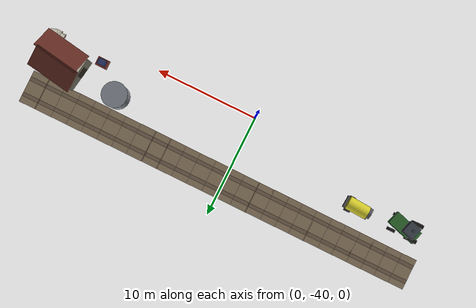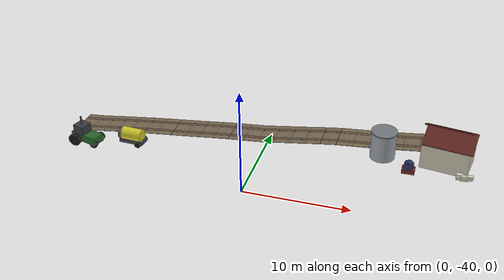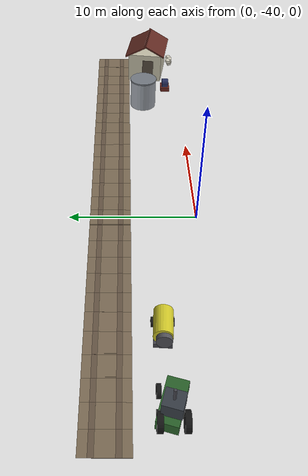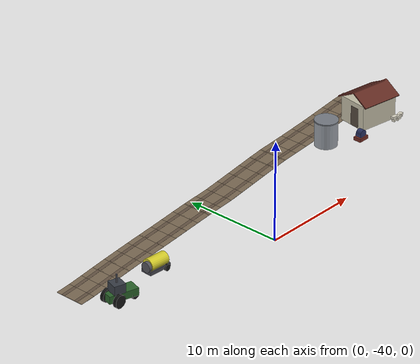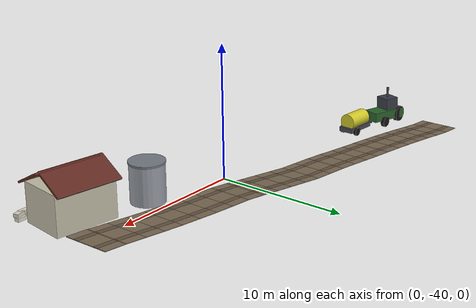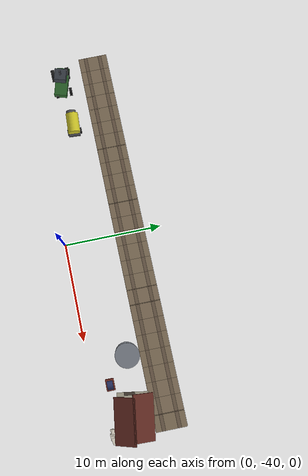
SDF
<sdf version="1.9">
 <world name="orchard_10x41">
  <model name="access_road">
   <static>true</static>
   <link name="link">
    <visual name="road_1">
     <pose>-18.510 -33.300 0.227 0.0000 -0.0709 0.0000</pose>
     <geometry><box><size>1.5696 3.0000 0.0400</size></box></geometry>
     <material>
      <ambient>0.440 0.380 0.300 1</ambient>
      <diffuse>0.484 0.418 0.330 1</diffuse>
      <specular>0.132 0.114 0.090 1</specular>
     </material>
     <plugin filename="gz-sim-label-system" name="gz::sim::systems::Label"><label>65</label></plugin>
    </visual>
    <visual name="rut_2">
     <pose>-18.510 -34.050 0.249 0.0000 -0.0709 0.0000</pose>
     <geometry><box><size>1.5696 0.3500 0.0120</size></box></geometry>
     <material>
      <ambient>0.360 0.300 0.240 1</ambient>
      <diffuse>0.396 0.330 0.264 1</diffuse>
      <specular>0.108 0.090 0.072 1</specular>
     </material>
     <plugin filename="gz-sim-label-system" name="gz::sim::systems::Label"><label>65</label></plugin>
    </visual>
    <visual name="rut_3">
     <pose>-18.510 -32.550 0.249 0.0000 -0.0709 0.0000</pose>
     <geometry><box><size>1.5696 0.3500 0.0120</size></box></geometry>
     <material>
      <ambient>0.360 0.300 0.240 1</ambient>
      <diffuse>0.396 0.330 0.264 1</diffuse>
      <specular>0.108 0.090 0.072 1</specular>
     </material>
     <plugin filename="gz-sim-label-system" name="gz::sim::systems::Label"><label>65</label></plugin>
    </visual>
    <visual name="road_4">
     <pose>-17.029 -33.300 0.366 0.0000 -0.1166 0.0000</pose>
     <geometry><box><size>1.5696 3.0000 0.0400</size></box></geometry>
     <material>
      <ambient>0.440 0.380 0.300 1</ambient>
      <diffuse>0.484 0.418 0.330 1</diffuse>
      <specular>0.132 0.114 0.090 1</specular>
     </material>
     <plugin filename="gz-sim-label-system" name="gz::sim::systems::Label"><label>65</label></plugin>
    </visual>
    <visual name="rut_5">
     <pose>-17.029 -34.050 0.388 0.0000 -0.1166 0.0000</pose>
     <geometry><box><size>1.5696 0.3500 0.0120</size></box></geometry>
     <material>
      <ambient>0.360 0.300 0.240 1</ambient>
      <diffuse>0.396 0.330 0.264 1</diffuse>
      <specular>0.108 0.090 0.072 1</specular>
     </material>
     <plugin filename="gz-sim-label-system" name="gz::sim::systems::Label"><label>65</label></plugin>
    </visual>
    <visual name="rut_6">
     <pose>-17.029 -32.550 0.388 0.0000 -0.1166 0.0000</pose>
     <geometry><box><size>1.5696 0.3500 0.0120</size></box></geometry>
     <material>
      <ambient>0.360 0.300 0.240 1</ambient>
      <diffuse>0.396 0.330 0.264 1</diffuse>
      <specular>0.108 0.090 0.072 1</specular>
     </material>
     <plugin filename="gz-sim-label-system" name="gz::sim::systems::Label"><label>65</label></plugin>
    </visual>
    <visual name="road_7">
     <pose>-15.548 -33.300 0.547 0.0000 -0.1269 0.0000</pose>
     <geometry><box><size>1.5696 3.0000 0.0400</size></box></geometry>
     <material>
      <ambient>0.440 0.380 0.300 1</ambient>
      <diffuse>0.484 0.418 0.330 1</diffuse>
      <specular>0.132 0.114 0.090 1</specular>
     </material>
     <plugin filename="gz-sim-label-system" name="gz::sim::systems::Label"><label>65</label></plugin>
    </visual>
    <visual name="rut_8">
     <pose>-15.548 -34.050 0.569 0.0000 -0.1269 0.0000</pose>
     <geometry><box><size>1.5696 0.3500 0.0120</size></box></geometry>
     <material>
      <ambient>0.360 0.300 0.240 1</ambient>
      <diffuse>0.396 0.330 0.264 1</diffuse>
      <specular>0.108 0.090 0.072 1</specular>
     </material>
     <plugin filename="gz-sim-label-system" name="gz::sim::systems::Label"><label>65</label></plugin>
    </visual>
    <visual name="rut_9">
     <pose>-15.548 -32.550 0.569 0.0000 -0.1269 0.0000</pose>
     <geometry><box><size>1.5696 0.3500 0.0120</size></box></geometry>
     <material>
      <ambient>0.360 0.300 0.240 1</ambient>
      <diffuse>0.396 0.330 0.264 1</diffuse>
      <specular>0.108 0.090 0.072 1</specular>
     </material>
     <plugin filename="gz-sim-label-system" name="gz::sim::systems::Label"><label>65</label></plugin>
    </visual>
    <visual name="road_10">
     <pose>-14.067 -33.300 0.730 0.0000 -0.1186 0.0000</pose>
     <geometry><box><size>1.5696 3.0000 0.0400</size></box></geometry>
     <material>
      <ambient>0.440 0.380 0.300 1</ambient>
      <diffuse>0.484 0.418 0.330 1</diffuse>
      <specular>0.132 0.114 0.090 1</specular>
     </material>
     <plugin filename="gz-sim-label-system" name="gz::sim::systems::Label"><label>65</label></plugin>
    </visual>
    <visual name="rut_11">
     <pose>-14.067 -34.050 0.752 0.0000 -0.1186 0.0000</pose>
     <geometry><box><size>1.5696 0.3500 0.0120</size></box></geometry>
     <material>
      <ambient>0.360 0.300 0.240 1</ambient>
      <diffuse>0.396 0.330 0.264 1</diffuse>
      <specular>0.108 0.090 0.072 1</specular>
     </material>
     <plugin filename="gz-sim-label-system" name="gz::sim::systems::Label"><label>65</label></plugin>
    </visual>
    <visual name="rut_12">
     <pose>-14.067 -32.550 0.752 0.0000 -0.1186 0.0000</pose>
     <geometry><box><size>1.5696 0.3500 0.0120</size></box></geometry>
     <material>
      <ambient>0.360 0.300 0.240 1</ambient>
      <diffuse>0.396 0.330 0.264 1</diffuse>
      <specular>0.108 0.090 0.072 1</specular>
     </material>
     <plugin filename="gz-sim-label-system" name="gz::sim::systems::Label"><label>65</label></plugin>
    </visual>
    <visual name="road_13">
     <pose>-12.587 -33.300 0.899 0.0000 -0.1083 0.0000</pose>
     <geometry><box><size>1.5696 3.0000 0.0400</size></box></geometry>
     <material>
      <ambient>0.440 0.380 0.300 1</ambient>
      <diffuse>0.484 0.418 0.330 1</diffuse>
      <specular>0.132 0.114 0.090 1</specular>
     </material>
     <plugin filename="gz-sim-label-system" name="gz::sim::systems::Label"><label>65</label></plugin>
    </visual>
    <visual name="rut_14">
     <pose>-12.587 -34.050 0.921 0.0000 -0.1083 0.0000</pose>
     <geometry><box><size>1.5696 0.3500 0.0120</size></box></geometry>
     <material>
      <ambient>0.360 0.300 0.240 1</ambient>
      <diffuse>0.396 0.330 0.264 1</diffuse>
      <specular>0.108 0.090 0.072 1</specular>
     </material>
     <plugin filename="gz-sim-label-system" name="gz::sim::systems::Label"><label>65</label></plugin>
    </visual>
    <visual name="rut_15">
     <pose>-12.587 -32.550 0.921 0.0000 -0.1083 0.0000</pose>
     <geometry><box><size>1.5696 0.3500 0.0120</size></box></geometry>
     <material>
      <ambient>0.360 0.300 0.240 1</ambient>
      <diffuse>0.396 0.330 0.264 1</diffuse>
      <specular>0.108 0.090 0.072 1</specular>
     </material>
     <plugin filename="gz-sim-label-system" name="gz::sim::systems::Label"><label>65</label></plugin>
    </visual>
    <visual name="road_16">
     <pose>-11.106 -33.300 1.058 0.0000 -0.1068 0.0000</pose>
     <geometry><box><size>1.5696 3.0000 0.0400</size></box></geometry>
     <material>
      <ambient>0.440 0.380 0.300 1</ambient>
      <diffuse>0.484 0.418 0.330 1</diffuse>
      <specular>0.132 0.114 0.090 1</specular>
     </material>
     <plugin filename="gz-sim-label-system" name="gz::sim::systems::Label"><label>65</label></plugin>
    </visual>
    <visual name="rut_17">
     <pose>-11.106 -34.050 1.080 0.0000 -0.1068 0.0000</pose>
     <geometry><box><size>1.5696 0.3500 0.0120</size></box></geometry>
     <material>
      <ambient>0.360 0.300 0.240 1</ambient>
      <diffuse>0.396 0.330 0.264 1</diffuse>
      <specular>0.108 0.090 0.072 1</specular>
     </material>
     <plugin filename="gz-sim-label-system" name="gz::sim::systems::Label"><label>65</label></plugin>
    </visual>
    <visual name="rut_18">
     <pose>-11.106 -32.550 1.080 0.0000 -0.1068 0.0000</pose>
     <geometry><box><size>1.5696 0.3500 0.0120</size></box></geometry>
     <material>
      <ambient>0.360 0.300 0.240 1</ambient>
      <diffuse>0.396 0.330 0.264 1</diffuse>
      <specular>0.108 0.090 0.072 1</specular>
     </material>
     <plugin filename="gz-sim-label-system" name="gz::sim::systems::Label"><label>65</label></plugin>
    </visual>
    <visual name="road_19">
     <pose>-9.625 -33.300 1.208 0.0000 -0.0943 0.0000</pose>
     <geometry><box><size>1.5696 3.0000 0.0400</size></box></geometry>
     <material>
      <ambient>0.440 0.380 0.300 1</ambient>
      <diffuse>0.484 0.418 0.330 1</diffuse>
      <specular>0.132 0.114 0.090 1</specular>
     </material>
     <plugin filename="gz-sim-label-system" name="gz::sim::systems::Label"><label>65</label></plugin>
    </visual>
    <visual name="rut_20">
     <pose>-9.625 -34.050 1.230 0.0000 -0.0943 0.0000</pose>
     <geometry><box><size>1.5696 0.3500 0.0120</size></box></geometry>
     <material>
      <ambient>0.360 0.300 0.240 1</ambient>
      <diffuse>0.396 0.330 0.264 1</diffuse>
      <specular>0.108 0.090 0.072 1</specular>
     </material>
     <plugin filename="gz-sim-label-system" name="gz::sim::systems::Label"><label>65</label></plugin>
    </visual>
    <visual name="rut_21">
     <pose>-9.625 -32.550 1.230 0.0000 -0.0943 0.0000</pose>
     <geometry><box><size>1.5696 0.3500 0.0120</size></box></geometry>
     <material>
      <ambient>0.360 0.300 0.240 1</ambient>
      <diffuse>0.396 0.330 0.264 1</diffuse>
      <specular>0.108 0.090 0.072 1</specular>
     </material>
     <plugin filename="gz-sim-label-system" name="gz::sim::systems::Label"><label>65</label></plugin>
    </visual>
    <visual name="road_22">
     <pose>-8.144 -33.300 1.348 0.0000 -0.0942 0.0000</pose>
     <geometry><box><size>1.5696 3.0000 0.0400</size></box></geometry>
     <material>
      <ambient>0.440 0.380 0.300 1</ambient>
      <diffuse>0.484 0.418 0.330 1</diffuse>
      <specular>0.132 0.114 0.090 1</specular>
     </material>
     <plugin filename="gz-sim-label-system" name="gz::sim::systems::Label"><label>65</label></plugin>
    </visual>
    <visual name="rut_23">
     <pose>-8.144 -34.050 1.370 0.0000 -0.0942 0.0000</pose>
     <geometry><box><size>1.5696 0.3500 0.0120</size></box></geometry>
     <material>
      <ambient>0.360 0.300 0.240 1</ambient>
      <diffuse>0.396 0.330 0.264 1</diffuse>
      <specular>0.108 0.090 0.072 1</specular>
     </material>
     <plugin filename="gz-sim-label-system" name="gz::sim::systems::Label"><label>65</label></plugin>
    </visual>
    <visual name="rut_24">
     <pose>-8.144 -32.550 1.370 0.0000 -0.0942 0.0000</pose>
     <geometry><box><size>1.5696 0.3500 0.0120</size></box></geometry>
     <material>
      <ambient>0.360 0.300 0.240 1</ambient>
      <diffuse>0.396 0.330 0.264 1</diffuse>
      <specular>0.108 0.090 0.072 1</specular>
     </material>
     <plugin filename="gz-sim-label-system" name="gz::sim::systems::Label"><label>65</label></plugin>
    </visual>
    <visual name="road_25">
     <pose>-6.663 -33.300 1.494 0.0000 -0.1031 0.0000</pose>
     <geometry><box><size>1.5696 3.0000 0.0400</size></box></geometry>
     <material>
      <ambient>0.440 0.380 0.300 1</ambient>
      <diffuse>0.484 0.418 0.330 1</diffuse>
      <specular>0.132 0.114 0.090 1</specular>
     </material>
     <plugin filename="gz-sim-label-system" name="gz::sim::systems::Label"><label>65</label></plugin>
    </visual>
    <visual name="rut_26">
     <pose>-6.663 -34.050 1.516 0.0000 -0.1031 0.0000</pose>
     <geometry><box><size>1.5696 0.3500 0.0120</size></box></geometry>
     <material>
      <ambient>0.360 0.300 0.240 1</ambient>
      <diffuse>0.396 0.330 0.264 1</diffuse>
      <specular>0.108 0.090 0.072 1</specular>
     </material>
     <plugin filename="gz-sim-label-system" name="gz::sim::systems::Label"><label>65</label></plugin>
    </visual>
    <visual name="rut_27">
     <pose>-6.663 -32.550 1.516 0.0000 -0.1031 0.0000</pose>
     <geometry><box><size>1.5696 0.3500 0.0120</size></box></geometry>
     <material>
      <ambient>0.360 0.300 0.240 1</ambient>
      <diffuse>0.396 0.330 0.264 1</diffuse>
      <specular>0.108 0.090 0.072 1</specular>
     </material>
     <plugin filename="gz-sim-label-system" name="gz::sim::systems::Label"><label>65</label></plugin>
    </visual>
    <visual name="road_28">
     <pose>-5.183 -33.300 1.650 0.0000 -0.1066 0.0000</pose>
     <geometry><box><size>1.5696 3.0000 0.0400</size></box></geometry>
     <material>
      <ambient>0.440 0.380 0.300 1</ambient>
      <diffuse>0.484 0.418 0.330 1</diffuse>
      <specular>0.132 0.114 0.090 1</specular>
     </material>
     <plugin filename="gz-sim-label-system" name="gz::sim::systems::Label"><label>65</label></plugin>
    </visual>
    <visual name="rut_29">
     <pose>-5.183 -34.050 1.672 0.0000 -0.1066 0.0000</pose>
     <geometry><box><size>1.5696 0.3500 0.0120</size></box></geometry>
     <material>
      <ambient>0.360 0.300 0.240 1</ambient>
      <diffuse>0.396 0.330 0.264 1</diffuse>
      <specular>0.108 0.090 0.072 1</specular>
     </material>
     <plugin filename="gz-sim-label-system" name="gz::sim::systems::Label"><label>65</label></plugin>
    </visual>
    <visual name="rut_30">
     <pose>-5.183 -32.550 1.672 0.0000 -0.1066 0.0000</pose>
     <geometry><box><size>1.5696 0.3500 0.0120</size></box></geometry>
     <material>
      <ambient>0.360 0.300 0.240 1</ambient>
      <diffuse>0.396 0.330 0.264 1</diffuse>
      <specular>0.108 0.090 0.072 1</specular>
     </material>
     <plugin filename="gz-sim-label-system" name="gz::sim::systems::Label"><label>65</label></plugin>
    </visual>
    <visual name="road_31">
     <pose>-3.702 -33.300 1.801 0.0000 -0.0961 0.0000</pose>
     <geometry><box><size>1.5696 3.0000 0.0400</size></box></geometry>
     <material>
      <ambient>0.440 0.380 0.300 1</ambient>
      <diffuse>0.484 0.418 0.330 1</diffuse>
      <specular>0.132 0.114 0.090 1</specular>
     </material>
     <plugin filename="gz-sim-label-system" name="gz::sim::systems::Label"><label>65</label></plugin>
    </visual>
    <visual name="rut_32">
     <pose>-3.702 -34.050 1.823 0.0000 -0.0961 0.0000</pose>
     <geometry><box><size>1.5696 0.3500 0.0120</size></box></geometry>
     <material>
      <ambient>0.360 0.300 0.240 1</ambient>
      <diffuse>0.396 0.330 0.264 1</diffuse>
      <specular>0.108 0.090 0.072 1</specular>
     </material>
     <plugin filename="gz-sim-label-system" name="gz::sim::systems::Label"><label>65</label></plugin>
    </visual>
    <visual name="rut_33">
     <pose>-3.702 -32.550 1.823 0.0000 -0.0961 0.0000</pose>
     <geometry><box><size>1.5696 0.3500 0.0120</size></box></geometry>
     <material>
      <ambient>0.360 0.300 0.240 1</ambient>
      <diffuse>0.396 0.330 0.264 1</diffuse>
      <specular>0.108 0.090 0.072 1</specular>
     </material>
     <plugin filename="gz-sim-label-system" name="gz::sim::systems::Label"><label>65</label></plugin>
    </visual>
    <visual name="road_34">
     <pose>-2.221 -33.300 1.930 0.0000 -0.0777 0.0000</pose>
     <geometry><box><size>1.5696 3.0000 0.0400</size></box></geometry>
     <material>
      <ambient>0.440 0.380 0.300 1</ambient>
      <diffuse>0.484 0.418 0.330 1</diffuse>
      <specular>0.132 0.114 0.090 1</specular>
     </material>
     <plugin filename="gz-sim-label-system" name="gz::sim::systems::Label"><label>65</label></plugin>
    </visual>
    <visual name="rut_35">
     <pose>-2.221 -34.050 1.952 0.0000 -0.0777 0.0000</pose>
     <geometry><box><size>1.5696 0.3500 0.0120</size></box></geometry>
     <material>
      <ambient>0.360 0.300 0.240 1</ambient>
      <diffuse>0.396 0.330 0.264 1</diffuse>
      <specular>0.108 0.090 0.072 1</specular>
     </material>
     <plugin filename="gz-sim-label-system" name="gz::sim::systems::Label"><label>65</label></plugin>
    </visual>
    <visual name="rut_36">
     <pose>-2.221 -32.550 1.952 0.0000 -0.0777 0.0000</pose>
     <geometry><box><size>1.5696 0.3500 0.0120</size></box></geometry>
     <material>
      <ambient>0.360 0.300 0.240 1</ambient>
      <diffuse>0.396 0.330 0.264 1</diffuse>
      <specular>0.108 0.090 0.072 1</specular>
     </material>
     <plugin filename="gz-sim-label-system" name="gz::sim::systems::Label"><label>65</label></plugin>
    </visual>
    <visual name="road_37">
     <pose>-0.740 -33.300 2.045 0.0000 -0.0779 0.0000</pose>
     <geometry><box><size>1.5696 3.0000 0.0400</size></box></geometry>
     <material>
      <ambient>0.440 0.380 0.300 1</ambient>
      <diffuse>0.484 0.418 0.330 1</diffuse>
      <specular>0.132 0.114 0.090 1</specular>
     </material>
     <plugin filename="gz-sim-label-system" name="gz::sim::systems::Label"><label>65</label></plugin>
    </visual>
    <visual name="rut_38">
     <pose>-0.740 -34.050 2.067 0.0000 -0.0779 0.0000</pose>
     <geometry><box><size>1.5696 0.3500 0.0120</size></box></geometry>
     <material>
      <ambient>0.360 0.300 0.240 1</ambient>
      <diffuse>0.396 0.330 0.264 1</diffuse>
      <specular>0.108 0.090 0.072 1</specular>
     </material>
     <plugin filename="gz-sim-label-system" name="gz::sim::systems::Label"><label>65</label></plugin>
    </visual>
    <visual name="rut_39">
     <pose>-0.740 -32.550 2.067 0.0000 -0.0779 0.0000</pose>
     <geometry><box><size>1.5696 0.3500 0.0120</size></box></geometry>
     <material>
      <ambient>0.360 0.300 0.240 1</ambient>
      <diffuse>0.396 0.330 0.264 1</diffuse>
      <specular>0.108 0.090 0.072 1</specular>
     </material>
     <plugin filename="gz-sim-label-system" name="gz::sim::systems::Label"><label>65</label></plugin>
    </visual>
    <visual name="road_40">
     <pose>0.740 -33.300 2.204 0.0000 -0.1353 0.0000</pose>
     <geometry><box><size>1.5696 3.0000 0.0400</size></box></geometry>
     <material>
      <ambient>0.440 0.380 0.300 1</ambient>
      <diffuse>0.484 0.418 0.330 1</diffuse>
      <specular>0.132 0.114 0.090 1</specular>
     </material>
     <plugin filename="gz-sim-label-system" name="gz::sim::systems::Label"><label>65</label></plugin>
    </visual>
    <visual name="rut_41">
     <pose>0.740 -34.050 2.226 0.0000 -0.1353 0.0000</pose>
     <geometry><box><size>1.5696 0.3500 0.0120</size></box></geometry>
     <material>
      <ambient>0.360 0.300 0.240 1</ambient>
      <diffuse>0.396 0.330 0.264 1</diffuse>
      <specular>0.108 0.090 0.072 1</specular>
     </material>
     <plugin filename="gz-sim-label-system" name="gz::sim::systems::Label"><label>65</label></plugin>
    </visual>
    <visual name="rut_42">
     <pose>0.740 -32.550 2.226 0.0000 -0.1353 0.0000</pose>
     <geometry><box><size>1.5696 0.3500 0.0120</size></box></geometry>
     <material>
      <ambient>0.360 0.300 0.240 1</ambient>
      <diffuse>0.396 0.330 0.264 1</diffuse>
      <specular>0.108 0.090 0.072 1</specular>
     </material>
     <plugin filename="gz-sim-label-system" name="gz::sim::systems::Label"><label>65</label></plugin>
    </visual>
    <visual name="road_43">
     <pose>2.221 -33.300 2.406 0.0000 -0.1354 0.0000</pose>
     <geometry><box><size>1.5696 3.0000 0.0400</size></box></geometry>
     <material>
      <ambient>0.440 0.380 0.300 1</ambient>
      <diffuse>0.484 0.418 0.330 1</diffuse>
      <specular>0.132 0.114 0.090 1</specular>
     </material>
     <plugin filename="gz-sim-label-system" name="gz::sim::systems::Label"><label>65</label></plugin>
    </visual>
    <visual name="rut_44">
     <pose>2.221 -34.050 2.428 0.0000 -0.1354 0.0000</pose>
     <geometry><box><size>1.5696 0.3500 0.0120</size></box></geometry>
     <material>
      <ambient>0.360 0.300 0.240 1</ambient>
      <diffuse>0.396 0.330 0.264 1</diffuse>
      <specular>0.108 0.090 0.072 1</specular>
     </material>
     <plugin filename="gz-sim-label-system" name="gz::sim::systems::Label"><label>65</label></plugin>
    </visual>
    <visual name="rut_45">
     <pose>2.221 -32.550 2.428 0.0000 -0.1354 0.0000</pose>
     <geometry><box><size>1.5696 0.3500 0.0120</size></box></geometry>
     <material>
      <ambient>0.360 0.300 0.240 1</ambient>
      <diffuse>0.396 0.330 0.264 1</diffuse>
      <specular>0.108 0.090 0.072 1</specular>
     </material>
     <plugin filename="gz-sim-label-system" name="gz::sim::systems::Label"><label>65</label></plugin>
    </visual>
    <visual name="road_46">
     <pose>3.702 -33.300 2.610 0.0000 -0.1392 0.0000</pose>
     <geometry><box><size>1.5696 3.0000 0.0400</size></box></geometry>
     <material>
      <ambient>0.440 0.380 0.300 1</ambient>
      <diffuse>0.484 0.418 0.330 1</diffuse>
      <specular>0.132 0.114 0.090 1</specular>
     </material>
     <plugin filename="gz-sim-label-system" name="gz::sim::systems::Label"><label>65</label></plugin>
    </visual>
    <visual name="rut_47">
     <pose>3.702 -34.050 2.632 0.0000 -0.1392 0.0000</pose>
     <geometry><box><size>1.5696 0.3500 0.0120</size></box></geometry>
     <material>
      <ambient>0.360 0.300 0.240 1</ambient>
      <diffuse>0.396 0.330 0.264 1</diffuse>
      <specular>0.108 0.090 0.072 1</specular>
     </material>
     <plugin filename="gz-sim-label-system" name="gz::sim::systems::Label"><label>65</label></plugin>
    </visual>
    <visual name="rut_48">
     <pose>3.702 -32.550 2.632 0.0000 -0.1392 0.0000</pose>
     <geometry><box><size>1.5696 0.3500 0.0120</size></box></geometry>
     <material>
      <ambient>0.360 0.300 0.240 1</ambient>
      <diffuse>0.396 0.330 0.264 1</diffuse>
      <specular>0.108 0.090 0.072 1</specular>
     </material>
     <plugin filename="gz-sim-label-system" name="gz::sim::systems::Label"><label>65</label></plugin>
    </visual>
    <visual name="road_49">
     <pose>5.183 -33.300 2.819 0.0000 -0.1412 0.0000</pose>
     <geometry><box><size>1.5696 3.0000 0.0400</size></box></geometry>
     <material>
      <ambient>0.440 0.380 0.300 1</ambient>
      <diffuse>0.484 0.418 0.330 1</diffuse>
      <specular>0.132 0.114 0.090 1</specular>
     </material>
     <plugin filename="gz-sim-label-system" name="gz::sim::systems::Label"><label>65</label></plugin>
    </visual>
    <visual name="rut_50">
     <pose>5.183 -34.050 2.841 0.0000 -0.1412 0.0000</pose>
     <geometry><box><size>1.5696 0.3500 0.0120</size></box></geometry>
     <material>
      <ambient>0.360 0.300 0.240 1</ambient>
      <diffuse>0.396 0.330 0.264 1</diffuse>
      <specular>0.108 0.090 0.072 1</specular>
     </material>
     <plugin filename="gz-sim-label-system" name="gz::sim::systems::Label"><label>65</label></plugin>
    </visual>
    <visual name="rut_51">
     <pose>5.183 -32.550 2.841 0.0000 -0.1412 0.0000</pose>
     <geometry><box><size>1.5696 0.3500 0.0120</size></box></geometry>
     <material>
      <ambient>0.360 0.300 0.240 1</ambient>
      <diffuse>0.396 0.330 0.264 1</diffuse>
      <specular>0.108 0.090 0.072 1</specular>
     </material>
     <plugin filename="gz-sim-label-system" name="gz::sim::systems::Label"><label>65</label></plugin>
    </visual>
    <visual name="road_52">
     <pose>6.663 -33.300 3.016 0.0000 -0.1233 0.0000</pose>
     <geometry><box><size>1.5696 3.0000 0.0400</size></box></geometry>
     <material>
      <ambient>0.440 0.380 0.300 1</ambient>
      <diffuse>0.484 0.418 0.330 1</diffuse>
      <specular>0.132 0.114 0.090 1</specular>
     </material>
     <plugin filename="gz-sim-label-system" name="gz::sim::systems::Label"><label>65</label></plugin>
    </visual>
    <visual name="rut_53">
     <pose>6.663 -34.050 3.038 0.0000 -0.1233 0.0000</pose>
     <geometry><box><size>1.5696 0.3500 0.0120</size></box></geometry>
     <material>
      <ambient>0.360 0.300 0.240 1</ambient>
      <diffuse>0.396 0.330 0.264 1</diffuse>
      <specular>0.108 0.090 0.072 1</specular>
     </material>
     <plugin filename="gz-sim-label-system" name="gz::sim::systems::Label"><label>65</label></plugin>
    </visual>
    <visual name="rut_54">
     <pose>6.663 -32.550 3.038 0.0000 -0.1233 0.0000</pose>
     <geometry><box><size>1.5696 0.3500 0.0120</size></box></geometry>
     <material>
      <ambient>0.360 0.300 0.240 1</ambient>
      <diffuse>0.396 0.330 0.264 1</diffuse>
      <specular>0.108 0.090 0.072 1</specular>
     </material>
     <plugin filename="gz-sim-label-system" name="gz::sim::systems::Label"><label>65</label></plugin>
    </visual>
    <visual name="road_55">
     <pose>8.144 -33.300 3.164 0.0000 -0.0755 0.0000</pose>
     <geometry><box><size>1.5696 3.0000 0.0400</size></box></geometry>
     <material>
      <ambient>0.440 0.380 0.300 1</ambient>
      <diffuse>0.484 0.418 0.330 1</diffuse>
      <specular>0.132 0.114 0.090 1</specular>
     </material>
     <plugin filename="gz-sim-label-system" name="gz::sim::systems::Label"><label>65</label></plugin>
    </visual>
    <visual name="rut_56">
     <pose>8.144 -34.050 3.186 0.0000 -0.0755 0.0000</pose>
     <geometry><box><size>1.5696 0.3500 0.0120</size></box></geometry>
     <material>
      <ambient>0.360 0.300 0.240 1</ambient>
      <diffuse>0.396 0.330 0.264 1</diffuse>
      <specular>0.108 0.090 0.072 1</specular>
     </material>
     <plugin filename="gz-sim-label-system" name="gz::sim::systems::Label"><label>65</label></plugin>
    </visual>
    <visual name="rut_57">
     <pose>8.144 -32.550 3.186 0.0000 -0.0755 0.0000</pose>
     <geometry><box><size>1.5696 0.3500 0.0120</size></box></geometry>
     <material>
      <ambient>0.360 0.300 0.240 1</ambient>
      <diffuse>0.396 0.330 0.264 1</diffuse>
      <specular>0.108 0.090 0.072 1</specular>
     </material>
     <plugin filename="gz-sim-label-system" name="gz::sim::systems::Label"><label>65</label></plugin>
    </visual>
    <visual name="road_58">
     <pose>9.625 -33.300 3.276 0.0000 -0.0758 0.0000</pose>
     <geometry><box><size>1.5696 3.0000 0.0400</size></box></geometry>
     <material>
      <ambient>0.440 0.380 0.300 1</ambient>
      <diffuse>0.484 0.418 0.330 1</diffuse>
      <specular>0.132 0.114 0.090 1</specular>
     </material>
     <plugin filename="gz-sim-label-system" name="gz::sim::systems::Label"><label>65</label></plugin>
    </visual>
    <visual name="rut_59">
     <pose>9.625 -34.050 3.298 0.0000 -0.0758 0.0000</pose>
     <geometry><box><size>1.5696 0.3500 0.0120</size></box></geometry>
     <material>
      <ambient>0.360 0.300 0.240 1</ambient>
      <diffuse>0.396 0.330 0.264 1</diffuse>
      <specular>0.108 0.090 0.072 1</specular>
     </material>
     <plugin filename="gz-sim-label-system" name="gz::sim::systems::Label"><label>65</label></plugin>
    </visual>
    <visual name="rut_60">
     <pose>9.625 -32.550 3.298 0.0000 -0.0758 0.0000</pose>
     <geometry><box><size>1.5696 0.3500 0.0120</size></box></geometry>
     <material>
      <ambient>0.360 0.300 0.240 1</ambient>
      <diffuse>0.396 0.330 0.264 1</diffuse>
      <specular>0.108 0.090 0.072 1</specular>
     </material>
     <plugin filename="gz-sim-label-system" name="gz::sim::systems::Label"><label>65</label></plugin>
    </visual>
    <visual name="road_61">
     <pose>11.106 -33.300 3.403 0.0000 -0.0951 0.0000</pose>
     <geometry><box><size>1.5696 3.0000 0.0400</size></box></geometry>
     <material>
      <ambient>0.440 0.380 0.300 1</ambient>
      <diffuse>0.484 0.418 0.330 1</diffuse>
      <specular>0.132 0.114 0.090 1</specular>
     </material>
     <plugin filename="gz-sim-label-system" name="gz::sim::systems::Label"><label>65</label></plugin>
    </visual>
    <visual name="rut_62">
     <pose>11.106 -34.050 3.425 0.0000 -0.0951 0.0000</pose>
     <geometry><box><size>1.5696 0.3500 0.0120</size></box></geometry>
     <material>
      <ambient>0.360 0.300 0.240 1</ambient>
      <diffuse>0.396 0.330 0.264 1</diffuse>
      <specular>0.108 0.090 0.072 1</specular>
     </material>
     <plugin filename="gz-sim-label-system" name="gz::sim::systems::Label"><label>65</label></plugin>
    </visual>
    <visual name="rut_63">
     <pose>11.106 -32.550 3.425 0.0000 -0.0951 0.0000</pose>
     <geometry><box><size>1.5696 0.3500 0.0120</size></box></geometry>
     <material>
      <ambient>0.360 0.300 0.240 1</ambient>
      <diffuse>0.396 0.330 0.264 1</diffuse>
      <specular>0.108 0.090 0.072 1</specular>
     </material>
     <plugin filename="gz-sim-label-system" name="gz::sim::systems::Label"><label>65</label></plugin>
    </visual>
    <visual name="road_64">
     <pose>12.587 -33.300 3.546 0.0000 -0.0974 0.0000</pose>
     <geometry><box><size>1.5696 3.0000 0.0400</size></box></geometry>
     <material>
      <ambient>0.440 0.380 0.300 1</ambient>
      <diffuse>0.484 0.418 0.330 1</diffuse>
      <specular>0.132 0.114 0.090 1</specular>
     </material>
     <plugin filename="gz-sim-label-system" name="gz::sim::systems::Label"><label>65</label></plugin>
    </visual>
    <visual name="rut_65">
     <pose>12.587 -34.050 3.568 0.0000 -0.0974 0.0000</pose>
     <geometry><box><size>1.5696 0.3500 0.0120</size></box></geometry>
     <material>
      <ambient>0.360 0.300 0.240 1</ambient>
      <diffuse>0.396 0.330 0.264 1</diffuse>
      <specular>0.108 0.090 0.072 1</specular>
     </material>
     <plugin filename="gz-sim-label-system" name="gz::sim::systems::Label"><label>65</label></plugin>
    </visual>
    <visual name="rut_66">
     <pose>12.587 -32.550 3.568 0.0000 -0.0974 0.0000</pose>
     <geometry><box><size>1.5696 0.3500 0.0120</size></box></geometry>
     <material>
      <ambient>0.360 0.300 0.240 1</ambient>
      <diffuse>0.396 0.330 0.264 1</diffuse>
      <specular>0.108 0.090 0.072 1</specular>
     </material>
     <plugin filename="gz-sim-label-system" name="gz::sim::systems::Label"><label>65</label></plugin>
    </visual>
    <visual name="road_67">
     <pose>14.067 -33.300 3.701 0.0000 -0.1117 0.0000</pose>
     <geometry><box><size>1.5696 3.0000 0.0400</size></box></geometry>
     <material>
      <ambient>0.440 0.380 0.300 1</ambient>
      <diffuse>0.484 0.418 0.330 1</diffuse>
      <specular>0.132 0.114 0.090 1</specular>
     </material>
     <plugin filename="gz-sim-label-system" name="gz::sim::systems::Label"><label>65</label></plugin>
    </visual>
    <visual name="rut_68">
     <pose>14.067 -34.050 3.723 0.0000 -0.1117 0.0000</pose>
     <geometry><box><size>1.5696 0.3500 0.0120</size></box></geometry>
     <material>
      <ambient>0.360 0.300 0.240 1</ambient>
      <diffuse>0.396 0.330 0.264 1</diffuse>
      <specular>0.108 0.090 0.072 1</specular>
     </material>
     <plugin filename="gz-sim-label-system" name="gz::sim::systems::Label"><label>65</label></plugin>
    </visual>
    <visual name="rut_69">
     <pose>14.067 -32.550 3.723 0.0000 -0.1117 0.0000</pose>
     <geometry><box><size>1.5696 0.3500 0.0120</size></box></geometry>
     <material>
      <ambient>0.360 0.300 0.240 1</ambient>
      <diffuse>0.396 0.330 0.264 1</diffuse>
      <specular>0.108 0.090 0.072 1</specular>
     </material>
     <plugin filename="gz-sim-label-system" name="gz::sim::systems::Label"><label>65</label></plugin>
    </visual>
    <visual name="road_70">
     <pose>15.548 -33.300 3.876 0.0000 -0.1234 0.0000</pose>
     <geometry><box><size>1.5696 3.0000 0.0400</size></box></geometry>
     <material>
      <ambient>0.440 0.380 0.300 1</ambient>
      <diffuse>0.484 0.418 0.330 1</diffuse>
      <specular>0.132 0.114 0.090 1</specular>
     </material>
     <plugin filename="gz-sim-label-system" name="gz::sim::systems::Label"><label>65</label></plugin>
    </visual>
    <visual name="rut_71">
     <pose>15.548 -34.050 3.898 0.0000 -0.1234 0.0000</pose>
     <geometry><box><size>1.5696 0.3500 0.0120</size></box></geometry>
     <material>
      <ambient>0.360 0.300 0.240 1</ambient>
      <diffuse>0.396 0.330 0.264 1</diffuse>
      <specular>0.108 0.090 0.072 1</specular>
     </material>
     <plugin filename="gz-sim-label-system" name="gz::sim::systems::Label"><label>65</label></plugin>
    </visual>
    <visual name="rut_72">
     <pose>15.548 -32.550 3.898 0.0000 -0.1234 0.0000</pose>
     <geometry><box><size>1.5696 0.3500 0.0120</size></box></geometry>
     <material>
      <ambient>0.360 0.300 0.240 1</ambient>
      <diffuse>0.396 0.330 0.264 1</diffuse>
      <specular>0.108 0.090 0.072 1</specular>
     </material>
     <plugin filename="gz-sim-label-system" name="gz::sim::systems::Label"><label>65</label></plugin>
    </visual>
    <visual name="road_73">
     <pose>17.029 -33.300 4.056 0.0000 -0.1178 0.0000</pose>
     <geometry><box><size>1.5696 3.0000 0.0400</size></box></geometry>
     <material>
      <ambient>0.440 0.380 0.300 1</ambient>
      <diffuse>0.484 0.418 0.330 1</diffuse>
      <specular>0.132 0.114 0.090 1</specular>
     </material>
     <plugin filename="gz-sim-label-system" name="gz::sim::systems::Label"><label>65</label></plugin>
    </visual>
    <visual name="rut_74">
     <pose>17.029 -34.050 4.078 0.0000 -0.1178 0.0000</pose>
     <geometry><box><size>1.5696 0.3500 0.0120</size></box></geometry>
     <material>
      <ambient>0.360 0.300 0.240 1</ambient>
      <diffuse>0.396 0.330 0.264 1</diffuse>
      <specular>0.108 0.090 0.072 1</specular>
     </material>
     <plugin filename="gz-sim-label-system" name="gz::sim::systems::Label"><label>65</label></plugin>
    </visual>
    <visual name="rut_75">
     <pose>17.029 -32.550 4.078 0.0000 -0.1178 0.0000</pose>
     <geometry><box><size>1.5696 0.3500 0.0120</size></box></geometry>
     <material>
      <ambient>0.360 0.300 0.240 1</ambient>
      <diffuse>0.396 0.330 0.264 1</diffuse>
      <specular>0.108 0.090 0.072 1</specular>
     </material>
     <plugin filename="gz-sim-label-system" name="gz::sim::systems::Label"><label>65</label></plugin>
    </visual>
    <visual name="road_76">
     <pose>18.510 -33.300 4.213 0.0000 -0.0936 0.0000</pose>
     <geometry><box><size>1.5696 3.0000 0.0400</size></box></geometry>
     <material>
      <ambient>0.440 0.380 0.300 1</ambient>
      <diffuse>0.484 0.418 0.330 1</diffuse>
      <specular>0.132 0.114 0.090 1</specular>
     </material>
     <plugin filename="gz-sim-label-system" name="gz::sim::systems::Label"><label>65</label></plugin>
    </visual>
    <visual name="rut_77">
     <pose>18.510 -34.050 4.235 0.0000 -0.0936 0.0000</pose>
     <geometry><box><size>1.5696 0.3500 0.0120</size></box></geometry>
     <material>
      <ambient>0.360 0.300 0.240 1</ambient>
      <diffuse>0.396 0.330 0.264 1</diffuse>
      <specular>0.108 0.090 0.072 1</specular>
     </material>
     <plugin filename="gz-sim-label-system" name="gz::sim::systems::Label"><label>65</label></plugin>
    </visual>
    <visual name="rut_78">
     <pose>18.510 -32.550 4.235 0.0000 -0.0936 0.0000</pose>
     <geometry><box><size>1.5696 0.3500 0.0120</size></box></geometry>
     <material>
      <ambient>0.360 0.300 0.240 1</ambient>
      <diffuse>0.396 0.330 0.264 1</diffuse>
      <specular>0.108 0.090 0.072 1</specular>
     </material>
     <plugin filename="gz-sim-label-system" name="gz::sim::systems::Label"><label>65</label></plugin>
    </visual>
   </link>
  </model>
  <model name="farm_yard">
   <static>true</static>
   <link name="link">
    <visual name="shed_wall_1">
     <pose>17.250 -36.500 5.306 0.0000 0.0000 -0.1547</pose>
     <geometry><box><size>4.0000 3.0000 2.5000</size></box></geometry>
     <material>
      <ambient>0.700 0.680 0.600 1</ambient>
      <diffuse>0.770 0.748 0.660 1</diffuse>
      <specular>0.210 0.204 0.180 1</specular>
     </material>
     <plugin filename="gz-sim-label-system" name="gz::sim::systems::Label"><label>60</label></plugin>
    </visual>
    <visual name="roof_l_2">
     <pose>17.250 -37.350 6.956 0.5000 0.0000 -0.1547</pose>
     <geometry><box><size>4.2000 2.1000 0.1200</size></box></geometry>
     <material>
      <ambient>0.350 0.150 0.120 1</ambient>
      <diffuse>0.385 0.165 0.132 1</diffuse>
      <specular>0.105 0.045 0.036 1</specular>
     </material>
     <plugin filename="gz-sim-label-system" name="gz::sim::systems::Label"><label>60</label></plugin>
    </visual>
    <visual name="roof_r_3">
     <pose>17.250 -35.650 6.956 -0.5000 0.0000 -0.1547</pose>
     <geometry><box><size>4.2000 2.1000 0.1200</size></box></geometry>
     <material>
      <ambient>0.350 0.150 0.120 1</ambient>
      <diffuse>0.385 0.165 0.132 1</diffuse>
      <specular>0.105 0.045 0.036 1</specular>
     </material>
     <plugin filename="gz-sim-label-system" name="gz::sim::systems::Label"><label>60</label></plugin>
    </visual>
    <visual name="door_4">
     <pose>15.250 -36.500 5.056 0.0000 0.0000 -0.1547</pose>
     <geometry><box><size>0.0600 1.0000 2.0000</size></box></geometry>
     <material>
      <ambient>0.300 0.260 0.220 1</ambient>
      <diffuse>0.330 0.286 0.242 1</diffuse>
      <specular>0.090 0.078 0.066 1</specular>
     </material>
     <plugin filename="gz-sim-label-system" name="gz::sim::systems::Label"><label>60</label></plugin>
    </visual>
    <visual name="tank_5">
     <pose>11.750 -36.000 4.684 0.0000 0.0000 0.0000</pose>
     <geometry><cylinder><radius>1.1000</radius><length>2.5000</length></cylinder></geometry>
     <material>
      <ambient>0.550 0.570 0.600 1</ambient>
      <diffuse>0.605 0.627 0.660 1</diffuse>
      <specular>0.165 0.171 0.180 1</specular>
     </material>
     <plugin filename="gz-sim-label-system" name="gz::sim::systems::Label"><label>60</label></plugin>
    </visual>
    <visual name="tank_lid_6">
     <pose>11.750 -36.000 5.994 0.0000 0.0000 0.0000</pose>
     <geometry><cylinder><radius>1.1500</radius><length>0.1200</length></cylinder></geometry>
     <material>
      <ambient>0.420 0.440 0.470 1</ambient>
      <diffuse>0.462 0.484 0.517 1</diffuse>
      <specular>0.126 0.132 0.141 1</specular>
     </material>
     <plugin filename="gz-sim-label-system" name="gz::sim::systems::Label"><label>60</label></plugin>
    </visual>
    <visual name="reel_frame_7">
     <pose>14.250 -38.100 3.863 0.0000 0.0000 0.0000</pose>
     <geometry><box><size>1.1000 0.8000 0.3500</size></box></geometry>
     <material>
      <ambient>0.400 0.150 0.120 1</ambient>
      <diffuse>0.440 0.165 0.132 1</diffuse>
      <specular>0.120 0.045 0.036 1</specular>
     </material>
     <plugin filename="gz-sim-label-system" name="gz::sim::systems::Label"><label>60</label></plugin>
    </visual>
    <visual name="reel_drum_8">
     <pose>14.250 -38.100 4.303 1.5708 0.0000 0.0000</pose>
     <geometry><cylinder><radius>0.4200</radius><length>0.5500</length></cylinder></geometry>
     <material>
      <ambient>0.150 0.180 0.350 1</ambient>
      <diffuse>0.165 0.198 0.385 1</diffuse>
      <specular>0.045 0.054 0.105 1</specular>
     </material>
     <plugin filename="gz-sim-label-system" name="gz::sim::systems::Label"><label>60</label></plugin>
    </visual>
    <visual name="sack_9">
     <pose>18.450 -38.692 4.286 0.0000 0.0000 0.1635</pose>
     <geometry><box><size>0.6000 0.3500 0.2200</size></box></geometry>
     <material>
      <ambient>0.780 0.760 0.700 1</ambient>
      <diffuse>0.858 0.836 0.770 1</diffuse>
      <specular>0.234 0.228 0.210 1</specular>
     </material>
     <plugin filename="gz-sim-label-system" name="gz::sim::systems::Label"><label>60</label></plugin>
    </visual>
    <visual name="sack_10">
     <pose>18.830 -38.779 4.286 0.0000 0.0000 0.1552</pose>
     <geometry><box><size>0.6000 0.3500 0.2200</size></box></geometry>
     <material>
      <ambient>0.780 0.760 0.700 1</ambient>
      <diffuse>0.858 0.836 0.770 1</diffuse>
      <specular>0.234 0.228 0.210 1</specular>
     </material>
     <plugin filename="gz-sim-label-system" name="gz::sim::systems::Label"><label>60</label></plugin>
    </visual>
    <visual name="sack_11">
     <pose>19.210 -38.594 4.286 0.0000 0.0000 -0.0111</pose>
     <geometry><box><size>0.6000 0.3500 0.2200</size></box></geometry>
     <material>
      <ambient>0.780 0.760 0.700 1</ambient>
      <diffuse>0.858 0.836 0.770 1</diffuse>
      <specular>0.234 0.228 0.210 1</specular>
     </material>
     <plugin filename="gz-sim-label-system" name="gz::sim::systems::Label"><label>60</label></plugin>
    </visual>
    <visual name="sack_12">
     <pose>18.450 -38.642 4.516 0.0000 0.0000 -0.1241</pose>
     <geometry><box><size>0.6000 0.3500 0.2200</size></box></geometry>
     <material>
      <ambient>0.780 0.760 0.700 1</ambient>
      <diffuse>0.858 0.836 0.770 1</diffuse>
      <specular>0.234 0.228 0.210 1</specular>
     </material>
     <plugin filename="gz-sim-label-system" name="gz::sim::systems::Label"><label>60</label></plugin>
    </visual>
    <visual name="sack_13">
     <pose>18.830 -38.796 4.516 0.0000 0.0000 0.0243</pose>
     <geometry><box><size>0.6000 0.3500 0.2200</size></box></geometry>
     <material>
      <ambient>0.780 0.760 0.700 1</ambient>
      <diffuse>0.858 0.836 0.770 1</diffuse>
      <specular>0.234 0.228 0.210 1</specular>
     </material>
     <plugin filename="gz-sim-label-system" name="gz::sim::systems::Label"><label>60</label></plugin>
    </visual>
    <visual name="sack_14">
     <pose>19.210 -38.718 4.516 0.0000 0.0000 0.2182</pose>
     <geometry><box><size>0.6000 0.3500 0.2200</size></box></geometry>
     <material>
      <ambient>0.780 0.760 0.700 1</ambient>
      <diffuse>0.858 0.836 0.770 1</diffuse>
      <specular>0.234 0.228 0.210 1</specular>
     </material>
     <plugin filename="gz-sim-label-system" name="gz::sim::systems::Label"><label>60</label></plugin>
    </visual>
    <collision name="c0">
     <pose>17.250 -36.500 5.306 0.0000 0.0000 -0.1547</pose>
     <geometry><box><size>4.0000 3.0000 2.5000</size></box></geometry>
    </collision>
    <collision name="c1">
     <pose>11.750 -36.000 4.684 0.0000 0.0000 0.0000</pose>
     <geometry><cylinder><radius>1.1000</radius><length>2.5000</length></cylinder></geometry>
    </collision>
    <collision name="c2">
     <pose>14.250 -38.100 4.183 0.0000 0.0000 0.0000</pose>
     <geometry><box><size>1.1000 0.9000 1.0000</size></box></geometry>
    </collision>
   </link>
  </model>
  <model name="machinery">
   <static>true</static>
   <link name="link">
    <visual name="tr_body_1">
     <pose>-16.750 -37.000 1.086 0.0000 0.0000 -0.2869</pose>
     <geometry><box><size>2.9000 1.3000 0.7500</size></box></geometry>
     <material>
      <ambient>0.150 0.350 0.150 1</ambient>
      <diffuse>0.165 0.385 0.165 1</diffuse>
      <specular>0.045 0.105 0.045 1</specular>
     </material>
     <plugin filename="gz-sim-label-system" name="gz::sim::systems::Label"><label>61</label></plugin>
    </visual>
    <visual name="tr_cab_2">
     <pose>-17.200 -37.000 1.916 0.0000 0.0000 -0.2869</pose>
     <geometry><box><size>1.1500 1.2000 0.9000</size></box></geometry>
     <material>
      <ambient>0.200 0.220 0.250 1</ambient>
      <diffuse>0.220 0.242 0.275 1</diffuse>
      <specular>0.060 0.066 0.075 1</specular>
     </material>
     <plugin filename="gz-sim-label-system" name="gz::sim::systems::Label"><label>61</label></plugin>
    </visual>
    <visual name="tr_exh_3">
     <pose>-17.200 -37.000 2.716 0.0000 0.0000 0.0000</pose>
     <geometry><cylinder><radius>0.0900</radius><length>0.9000</length></cylinder></geometry>
     <material>
      <ambient>0.250 0.250 0.280 1</ambient>
      <diffuse>0.275 0.275 0.308 1</diffuse>
      <specular>0.075 0.075 0.084 1</specular>
     </material>
     <plugin filename="gz-sim-label-system" name="gz::sim::systems::Label"><label>61</label></plugin>
    </visual>
    <visual name="tr_wheel_4">
     <pose>-15.750 -36.280 0.786 -1.5708 0.0000 0.0000</pose>
     <geometry><cylinder><radius>0.4200</radius><length>0.2800</length></cylinder></geometry>
     <material>
      <ambient>0.080 0.080 0.080 1</ambient>
      <diffuse>0.088 0.088 0.088 1</diffuse>
      <specular>0.024 0.024 0.024 1</specular>
     </material>
     <plugin filename="gz-sim-label-system" name="gz::sim::systems::Label"><label>61</label></plugin>
    </visual>
    <visual name="tr_wheel_5">
     <pose>-15.750 -37.720 0.786 -1.5708 0.0000 0.0000</pose>
     <geometry><cylinder><radius>0.4200</radius><length>0.2800</length></cylinder></geometry>
     <material>
      <ambient>0.080 0.080 0.080 1</ambient>
      <diffuse>0.088 0.088 0.088 1</diffuse>
      <specular>0.024 0.024 0.024 1</specular>
     </material>
     <plugin filename="gz-sim-label-system" name="gz::sim::systems::Label"><label>61</label></plugin>
    </visual>
    <visual name="tr_wheel_6">
     <pose>-17.700 -36.250 0.986 -1.5708 0.0000 0.0000</pose>
     <geometry><cylinder><radius>0.6200</radius><length>0.3600</length></cylinder></geometry>
     <material>
      <ambient>0.080 0.080 0.080 1</ambient>
      <diffuse>0.088 0.088 0.088 1</diffuse>
      <specular>0.024 0.024 0.024 1</specular>
     </material>
     <plugin filename="gz-sim-label-system" name="gz::sim::systems::Label"><label>61</label></plugin>
    </visual>
    <visual name="tr_wheel_7">
     <pose>-17.700 -37.750 0.986 -1.5708 0.0000 0.0000</pose>
     <geometry><cylinder><radius>0.6200</radius><length>0.3600</length></cylinder></geometry>
     <material>
      <ambient>0.080 0.080 0.080 1</ambient>
      <diffuse>0.088 0.088 0.088 1</diffuse>
      <specular>0.024 0.024 0.024 1</specular>
     </material>
     <plugin filename="gz-sim-label-system" name="gz::sim::systems::Label"><label>61</label></plugin>
    </visual>
    <visual name="sp_tank_8">
     <pose>-11.950 -36.700 1.939 0.0000 1.5708 -0.0583</pose>
     <geometry><cylinder><radius>0.6200</radius><length>2.0000</length></cylinder></geometry>
     <material>
      <ambient>0.750 0.720 0.150 1</ambient>
      <diffuse>0.825 0.792 0.165 1</diffuse>
      <specular>0.225 0.216 0.045 1</specular>
     </material>
     <plugin filename="gz-sim-label-system" name="gz::sim::systems::Label"><label>61</label></plugin>
    </visual>
    <visual name="sp_fan_9">
     <pose>-13.100 -36.700 1.889 0.0000 1.5708 -0.0583</pose>
     <geometry><cylinder><radius>0.5000</radius><length>0.3500</length></cylinder></geometry>
     <material>
      <ambient>0.300 0.300 0.320 1</ambient>
      <diffuse>0.330 0.330 0.352 1</diffuse>
      <specular>0.090 0.090 0.096 1</specular>
     </material>
     <plugin filename="gz-sim-label-system" name="gz::sim::systems::Label"><label>61</label></plugin>
    </visual>
    <visual name="sp_chassis_10">
     <pose>-11.950 -36.700 1.359 0.0000 0.0000 -0.0583</pose>
     <geometry><box><size>2.4000 1.1500 0.3500</size></box></geometry>
     <material>
      <ambient>0.250 0.250 0.280 1</ambient>
      <diffuse>0.275 0.275 0.308 1</diffuse>
      <specular>0.075 0.075 0.084 1</specular>
     </material>
     <plugin filename="gz-sim-label-system" name="gz::sim::systems::Label"><label>61</label></plugin>
    </visual>
    <visual name="sp_wheel_11">
     <pose>-11.250 -36.080 1.259 -1.5708 0.0000 0.0000</pose>
     <geometry><cylinder><radius>0.3200</radius><length>0.2200</length></cylinder></geometry>
     <material>
      <ambient>0.080 0.080 0.080 1</ambient>
      <diffuse>0.088 0.088 0.088 1</diffuse>
      <specular>0.024 0.024 0.024 1</specular>
     </material>
     <plugin filename="gz-sim-label-system" name="gz::sim::systems::Label"><label>61</label></plugin>
    </visual>
    <visual name="sp_wheel_12">
     <pose>-11.250 -37.320 1.259 -1.5708 0.0000 0.0000</pose>
     <geometry><cylinder><radius>0.3200</radius><length>0.2200</length></cylinder></geometry>
     <material>
      <ambient>0.080 0.080 0.080 1</ambient>
      <diffuse>0.088 0.088 0.088 1</diffuse>
      <specular>0.024 0.024 0.024 1</specular>
     </material>
     <plugin filename="gz-sim-label-system" name="gz::sim::systems::Label"><label>61</label></plugin>
    </visual>
    <collision name="c0">
     <pose>-16.750 -37.000 1.266 0.0000 0.0000 -0.2869</pose>
     <geometry><box><size>3.0000 1.6000 1.8000</size></box></geometry>
    </collision>
    <collision name="c1">
     <pose>-11.950 -36.700 1.839 0.0000 0.0000 -0.0583</pose>
     <geometry><box><size>2.6000 1.3000 1.6000</size></box></geometry>
    </collision>
   </link>
  </model>
 </world>
</sdf>
